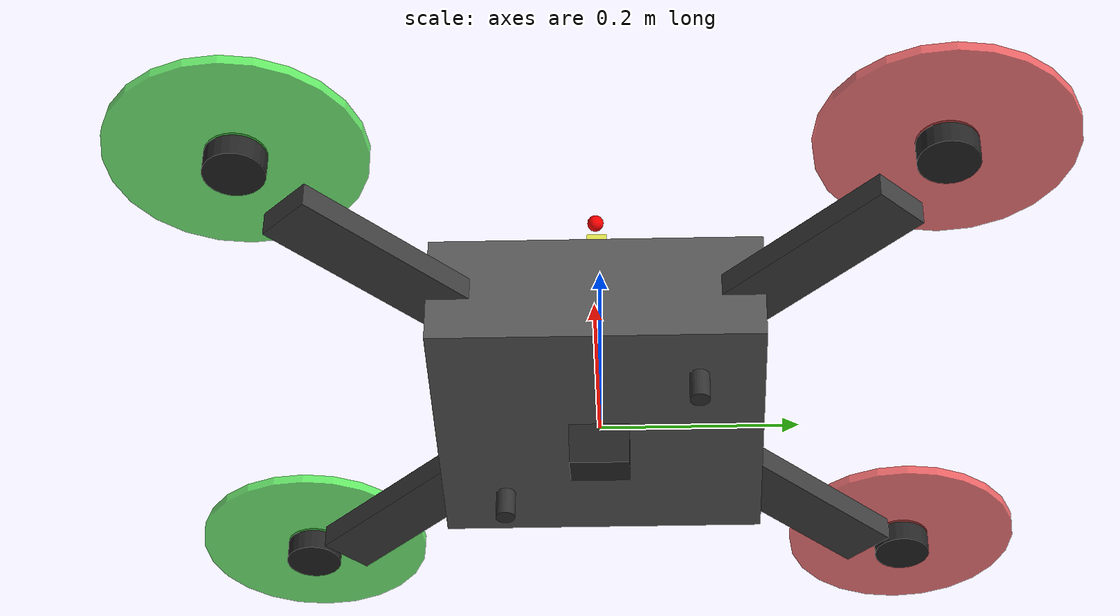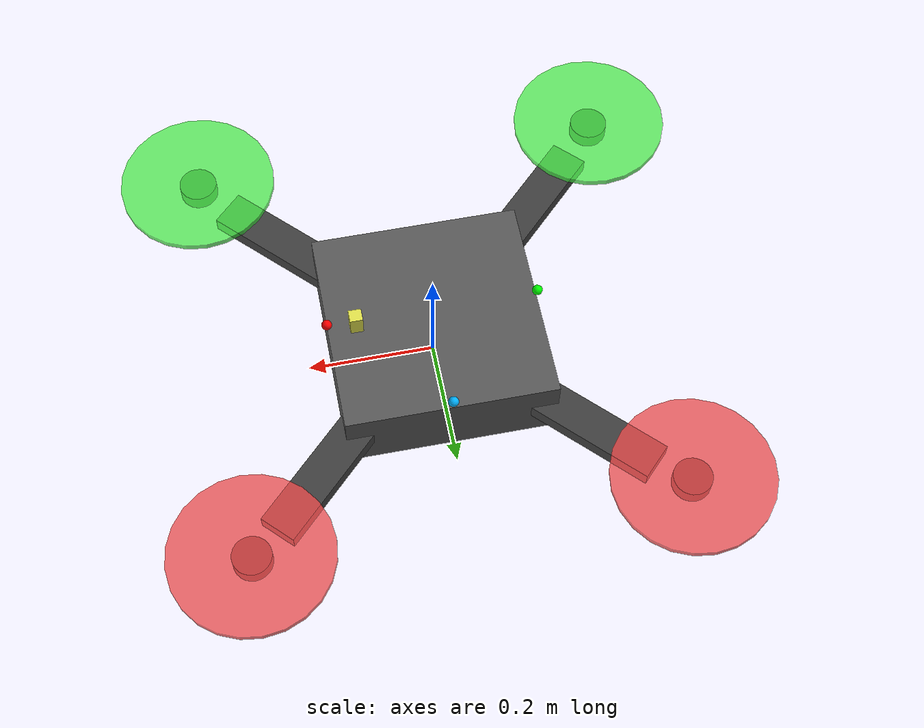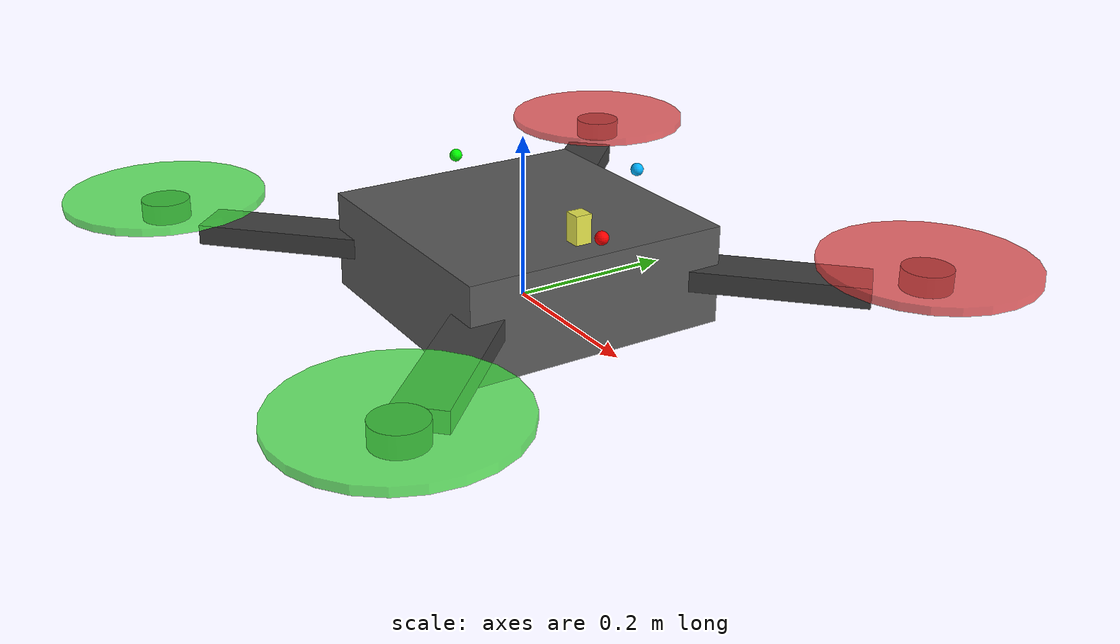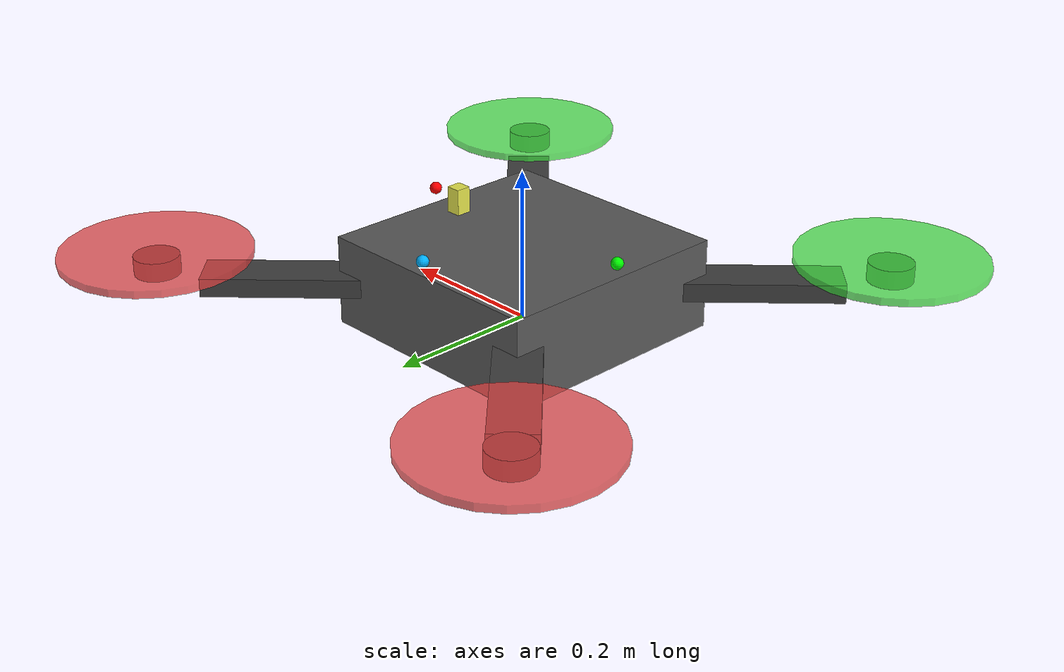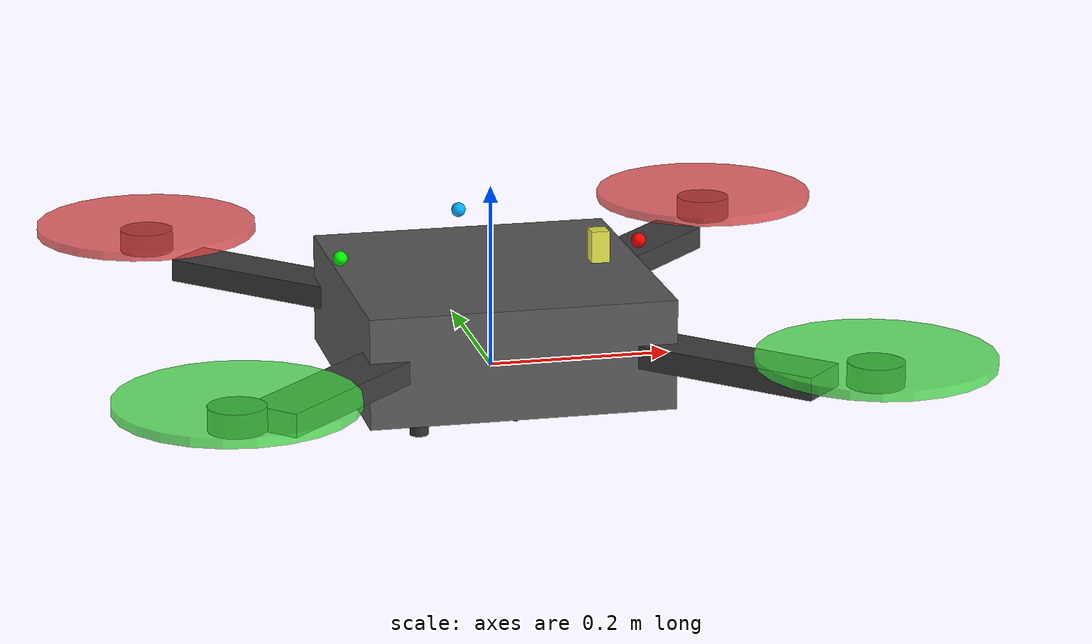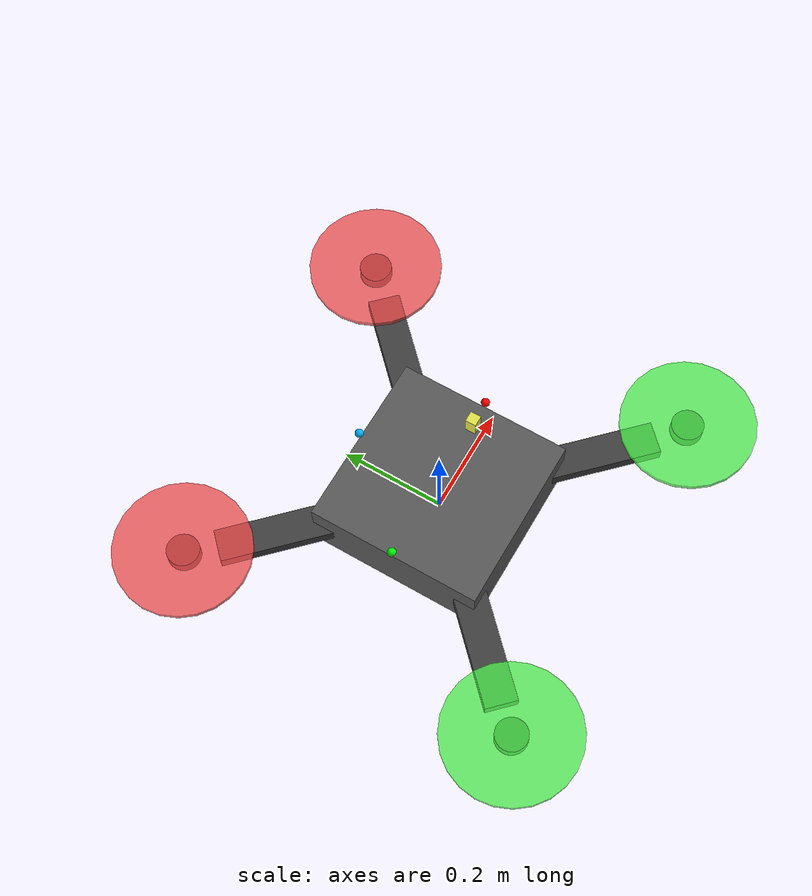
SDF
<?xml version="1.0"?>
<sdf version="1.9">
  <model name="iris_drone">
    <static>false</static>

    <!-- Main Body/Fuselage -->
    <link name="base_link">
      <pose>0 0 0.05 0 0 0</pose>
      <inertial>
        <mass>1.5</mass>
        <inertia>
          <ixx>0.021</ixx>
          <iyy>0.021</iyy>
          <izz>0.038</izz>
          <ixy>0.0</ixy>
          <ixz>0.0</ixz>
          <iyz>0.0</iyz>
        </inertia>
      </inertial>

      <!-- Main fuselage body -->
      <visual name="fuselage">
        <geometry>
          <box>
            <size>0.33 0.33 0.12</size>
          </box>
        </geometry>
        <material>
          <ambient>0.25 0.25 0.25 1</ambient>
          <diffuse>0.35 0.35 0.35 1</diffuse>
          <specular>0.5 0.5 0.5 1</specular>
        </material>
      </visual>

      <!-- Main fuselage collision -->
      <collision name="fuselage_collision">
        <geometry>
          <box>
            <size>0.33 0.33 0.12</size>
          </box>
        </geometry>
      </collision>

      <!-- Front left arm (pitch/roll control) -->
      <visual name="arm_fl">
        <pose>0.165 0.165 0 0 0 0.785</pose>
        <geometry>
          <box>
            <size>0.35 0.06 0.025</size>
          </box>
        </geometry>
        <material>
          <ambient>0.15 0.15 0.15 1</ambient>
          <diffuse>0.25 0.25 0.25 1</diffuse>
        </material>
      </visual>

      <!-- Front right arm -->
      <visual name="arm_fr">
        <pose>0.165 -0.165 0 0 0 -0.785</pose>
        <geometry>
          <box>
            <size>0.35 0.06 0.025</size>
          </box>
        </geometry>
        <material>
          <ambient>0.15 0.15 0.15 1</ambient>
          <diffuse>0.25 0.25 0.25 1</diffuse>
        </material>
      </visual>

      <!-- Back left arm -->
      <visual name="arm_bl">
        <pose>-0.165 0.165 0 0 0 -0.785</pose>
        <geometry>
          <box>
            <size>0.35 0.06 0.025</size>
          </box>
        </geometry>
        <material>
          <ambient>0.15 0.15 0.15 1</ambient>
          <diffuse>0.25 0.25 0.25 1</diffuse>
        </material>
      </visual>

      <!-- Back right arm -->
      <visual name="arm_br">
        <pose>-0.165 -0.165 0 0 0 0.785</pose>
        <geometry>
          <box>
            <size>0.35 0.06 0.025</size>
          </box>
        </geometry>
        <material>
          <ambient>0.15 0.15 0.15 1</ambient>
          <diffuse>0.25 0.25 0.25 1</diffuse>
        </material>
      </visual>

      <!-- ============ ROTORS (4x BLDC Motors) ============ -->
      <!-- Front left motor & propeller -->
      <visual name="motor_fl">
        <pose>0.33 0.33 0.02 0 0 0</pose>
        <geometry>
          <cylinder>
            <radius>0.03</radius>
            <length>0.025</length>
          </cylinder>
        </geometry>
        <material>
          <ambient>0.1 0.1 0.1 1</ambient>
          <diffuse>0.15 0.15 0.15 1</diffuse>
        </material>
      </visual>

      <visual name="prop_fl">
        <pose>0.33 0.33 0.035 0 0 0</pose>
        <geometry>
          <cylinder>
            <radius>0.125</radius>
            <length>0.01</length>
          </cylinder>
        </geometry>
        <material>
          <ambient>0.85 0.2 0.2 0.8</ambient>
          <diffuse>0.95 0.3 0.3 0.8</diffuse>
        </material>
      </visual>

      <!-- Front right motor & propeller -->
      <visual name="motor_fr">
        <pose>0.33 -0.33 0.02 0 0 0</pose>
        <geometry>
          <cylinder>
            <radius>0.03</radius>
            <length>0.025</length>
          </cylinder>
        </geometry>
        <material>
          <ambient>0.1 0.1 0.1 1</ambient>
          <diffuse>0.15 0.15 0.15 1</diffuse>
        </material>
      </visual>

      <visual name="prop_fr">
        <pose>0.33 -0.33 0.035 0 0 0</pose>
        <geometry>
          <cylinder>
            <radius>0.125</radius>
            <length>0.01</length>
          </cylinder>
        </geometry>
        <material>
          <ambient>0.2 0.8 0.2 0.8</ambient>
          <diffuse>0.3 0.95 0.3 0.8</diffuse>
        </material>
      </visual>

      <!-- Back left motor & propeller -->
      <visual name="motor_bl">
        <pose>-0.33 0.33 0.02 0 0 0</pose>
        <geometry>
          <cylinder>
            <radius>0.03</radius>
            <length>0.025</length>
          </cylinder>
        </geometry>
        <material>
          <ambient>0.1 0.1 0.1 1</ambient>
          <diffuse>0.15 0.15 0.15 1</diffuse>
        </material>
      </visual>

      <visual name="prop_bl">
        <pose>-0.33 0.33 0.035 0 0 0</pose>
        <geometry>
          <cylinder>
            <radius>0.125</radius>
            <length>0.01</length>
          </cylinder>
        </geometry>
        <material>
          <ambient>0.85 0.2 0.2 0.8</ambient>
          <diffuse>0.95 0.3 0.3 0.8</diffuse>
        </material>
      </visual>

      <!-- Back right motor & propeller -->
      <visual name="motor_br">
        <pose>-0.33 -0.33 0.02 0 0 0</pose>
        <geometry>
          <cylinder>
            <radius>0.03</radius>
            <length>0.025</length>
          </cylinder>
        </geometry>
        <material>
          <ambient>0.1 0.1 0.1 1</ambient>
          <diffuse>0.15 0.15 0.15 1</diffuse>
        </material>
      </visual>

      <visual name="prop_br">
        <pose>-0.33 -0.33 0.035 0 0 0</pose>
        <geometry>
          <cylinder>
            <radius>0.125</radius>
            <length>0.01</length>
          </cylinder>
        </geometry>
        <material>
          <ambient>0.2 0.8 0.2 0.8</ambient>
          <diffuse>0.3 0.95 0.3 0.8</diffuse>
        </material>
      </visual>

      <!-- ============ SENSORS ============ -->
      <!-- Camera/Gimbal (front-facing, downward-tilted) -->
      <visual name="camera_unit">
        <pose>0 0 -0.08 0 0.3 0</pose>
        <geometry>
          <box>
            <size>0.06 0.06 0.04</size>
          </box>
        </geometry>
        <material>
          <ambient>0.1 0.1 0.1 1</ambient>
          <diffuse>0.15 0.15 0.15 1</diffuse>
        </material>
      </visual>

      <!-- IMU (Inertial Measurement Unit) -->
      <visual name="imu_unit">
        <pose>0 0 0.01 0 0 0</pose>
        <geometry>
          <box>
            <size>0.02 0.02 0.02</size>
          </box>
        </geometry>
        <material>
          <ambient>0.2 0.2 0.8 1</ambient>
          <diffuse>0.3 0.3 0.9 1</diffuse>
        </material>
      </visual>

      <!-- GPS/GNSS antenna -->
      <visual name="gps_antenna">
        <pose>0.12 0 0.07 0 0 0</pose>
        <geometry>
          <box>
            <size>0.02 0.02 0.05</size>
          </box>
        </geometry>
        <material>
          <ambient>0.8 0.8 0.2 1</ambient>
          <diffuse>0.9 0.9 0.3 1</diffuse>
        </material>
      </visual>

      <!-- Barometer/Altimeter sensor -->
      <visual name="barometer">
        <pose>-0.12 0 0.05 0 0 0</pose>
        <geometry>
          <box>
            <size>0.015 0.015 0.015</size>
          </box>
        </geometry>
        <material>
          <ambient>0.2 0.6 0.8 1</ambient>
          <diffuse>0.3 0.7 0.9 1</diffuse>
        </material>
      </visual>

      <!-- ============ STATUS LIGHTS ============ -->
      <!-- Front LED (Red - indicator) -->
      <visual name="led_front">
        <pose>0.165 0 0.08 0 0 0</pose>
        <geometry>
          <sphere>
            <radius>0.008</radius>
          </sphere>
        </geometry>
        <material>
          <ambient>1 0 0 1</ambient>
          <diffuse>1 0 0 1</diffuse>
          <emissive>1 0 0 0.8</emissive>
        </material>
      </visual>

      <!-- Back LED (Green - indicator) -->
      <visual name="led_back">
        <pose>-0.165 0 0.08 0 0 0</pose>
        <geometry>
          <sphere>
            <radius>0.008</radius>
          </sphere>
        </geometry>
        <material>
          <ambient>0 1 0 1</ambient>
          <diffuse>0 1 0 1</diffuse>
          <emissive>0 1 0 0.8</emissive>
        </material>
      </visual>

      <!-- Battery indicator (Blue) -->
      <visual name="battery_indicator">
        <pose>0 0.165 0.08 0 0 0</pose>
        <geometry>
          <sphere>
            <radius>0.008</radius>
          </sphere>
        </geometry>
        <material>
          <ambient>0 0.5 1 1</ambient>
          <diffuse>0 0.7 1 1</diffuse>
          <emissive>0 0.7 1 0.8</emissive>
        </material>
      </visual>

      <!-- ============ BATTERY COMPARTMENT ============ -->
      <visual name="battery_pack">
        <pose>0 -0.12 -0.02 0 0 0</pose>
        <geometry>
          <box>
            <size>0.15 0.08 0.04</size>
          </box>
        </geometry>
        <material>
          <ambient>0.3 0.3 0.3 1</ambient>
          <diffuse>0.4 0.4 0.4 1</diffuse>
        </material>
      </visual>

      <!-- Landing gear (optional, minimal) -->
      <visual name="landing_gear">
        <pose>0.1 0.1 -0.06 0 0 0</pose>
        <geometry>
          <cylinder>
            <radius>0.01</radius>
            <length>0.06</length>
          </cylinder>
        </geometry>
        <material>
          <ambient>0.15 0.15 0.15 1</ambient>
          <diffuse>0.2 0.2 0.2 1</diffuse>
        </material>
      </visual>

      <visual name="landing_gear_2">
        <pose>-0.1 -0.1 -0.06 0 0 0</pose>
        <geometry>
          <cylinder>
            <radius>0.01</radius>
            <length>0.06</length>
          </cylinder>
        </geometry>
        <material>
          <ambient>0.15 0.15 0.15 1</ambient>
          <diffuse>0.2 0.2 0.2 1</diffuse>
        </material>
      </visual>
    </link>

    <!-- ============ FLIGHT CONTROL SYSTEM ============ -->
    <!-- Multicopter Plugin for Physics-based Flight -->
    <plugin filename="gz-sim-multicopter-motor-model-system" name="gz::sim::systems::MulticopterMotorModel">
      <robotNamespace></robotNamespace>
      <jointName>rotor_0_joint</jointName>
      <linkName>rotor_0</linkName>
      <turningDirection>ccw</turningDirection>
      <timeConstantUp>0.0125</timeConstantUp>
      <timeConstantDown>0.025</timeConstantDown>
      <maxRotVelocity>838</maxRotVelocity>
      <motorConstant>8.54858e-06</motorConstant>
      <momentConstant>0.016</momentConstant>
      <commandSubTopic>gazebo/command/motor_speed</commandSubTopic>
      <motorNumber>0</motorNumber>
      <controlJointName>rotor_0_joint</controlJointName>
      <motorSpeedPubTopic>motor_speed</motorSpeedPubTopic>
    </plugin>

    <plugin filename="gz-sim-multicopter-motor-model-system" name="gz::sim::systems::MulticopterMotorModel">
      <robotNamespace></robotNamespace>
      <jointName>rotor_1_joint</jointName>
      <linkName>rotor_1</linkName>
      <turningDirection>cw</turningDirection>
      <timeConstantUp>0.0125</timeConstantUp>
      <timeConstantDown>0.025</timeConstantDown>
      <maxRotVelocity>838</maxRotVelocity>
      <motorConstant>8.54858e-06</motorConstant>
      <momentConstant>0.016</momentConstant>
      <commandSubTopic>gazebo/command/motor_speed</commandSubTopic>
      <motorNumber>1</motorNumber>
      <controlJointName>rotor_1_joint</controlJointName>
      <motorSpeedPubTopic>motor_speed</motorSpeedPubTopic>
    </plugin>

    <plugin filename="gz-sim-multicopter-motor-model-system" name="gz::sim::systems::MulticopterMotorModel">
      <robotNamespace></robotNamespace>
      <jointName>rotor_2_joint</jointName>
      <linkName>rotor_2</linkName>
      <turningDirection>ccw</turningDirection>
      <timeConstantUp>0.0125</timeConstantUp>
      <timeConstantDown>0.025</timeConstantDown>
      <maxRotVelocity>838</maxRotVelocity>
      <motorConstant>8.54858e-06</motorConstant>
      <momentConstant>0.016</momentConstant>
      <commandSubTopic>gazebo/command/motor_speed</commandSubTopic>
      <motorNumber>2</motorNumber>
      <controlJointName>rotor_2_joint</controlJointName>
      <motorSpeedPubTopic>motor_speed</motorSpeedPubTopic>
    </plugin>

    <plugin filename="gz-sim-multicopter-motor-model-system" name="gz::sim::systems::MulticopterMotorModel">
      <robotNamespace></robotNamespace>
      <jointName>rotor_3_joint</jointName>
      <linkName>rotor_3</linkName>
      <turningDirection>cw</turningDirection>
      <timeConstantUp>0.0125</timeConstantUp>
      <timeConstantDown>0.025</timeConstantDown>
      <maxRotVelocity>838</maxRotVelocity>
      <motorConstant>8.54858e-06</motorConstant>
      <momentConstant>0.016</momentConstant>
      <commandSubTopic>gazebo/command/motor_speed</commandSubTopic>
      <motorNumber>3</motorNumber>
      <controlJointName>rotor_3_joint</controlJointName>
      <motorSpeedPubTopic>motor_speed</motorSpeedPubTopic>
    </plugin>
  </model>
</sdf>
